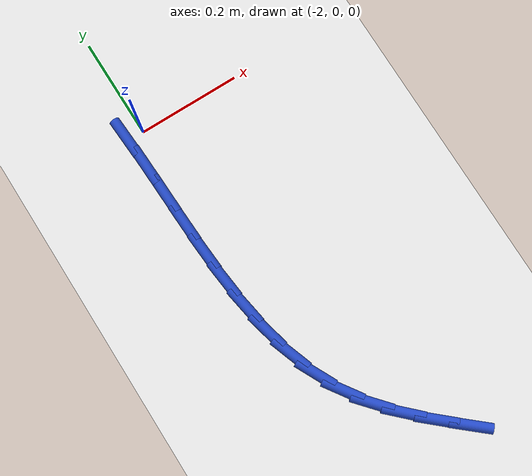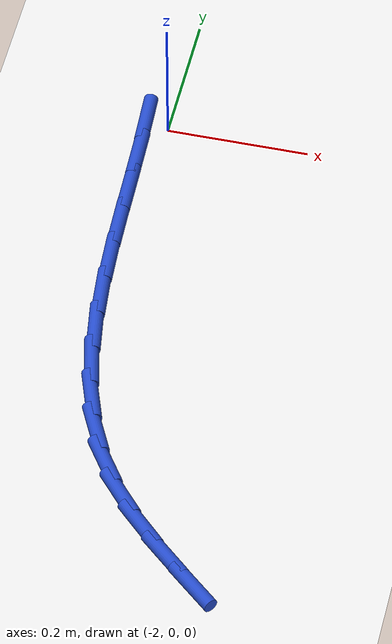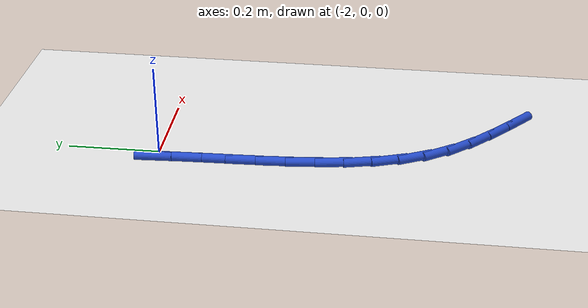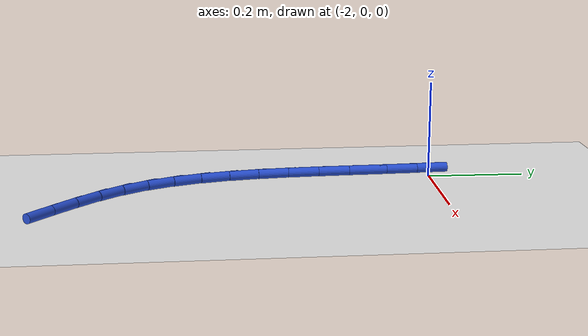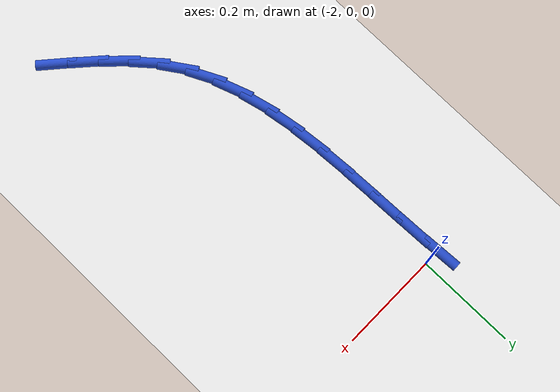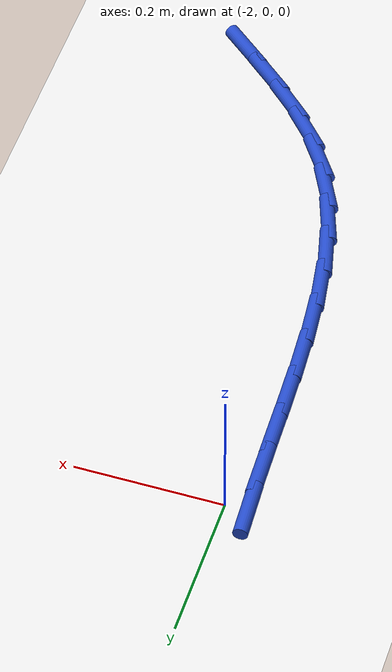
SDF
<sdf version="1.6">
 <world name="default">
  <model name="ground_plane">
   <static>1</static>
   <link name="link">
    <collision name="collision">
     <geometry><plane><normal>0 0 1</normal><size>100 100</size></plane></geometry>
     <surface><friction><ode><mu>100</mu><mu2>50</mu2></ode></friction></surface>
    </collision>
    <visual name="visual">
     <cast_shadows>0</cast_shadows>
     <geometry><plane><normal>0 0 1</normal><size>100 100</size></plane></geometry>
     <material>
      <script><uri>file://media/materials/scripts/gazebo.material</uri><name>Gazebo/WhiteGlow</name></script>
     </material>
    </visual>
   </link>
  </model>
  <model name="line">
   <link name="link_63">
    <pose>-2.032128498871237 0.00517659660904159 0.01 0 1.57 -1.5178224919789889</pose>
    <collision name="collision">
     <geometry><cylinder><radius>0.01</radius><length>0.08</length></cylinder></geometry>
    </collision>
    <visual name="visual">
     <material>
      <script><name>Gazebo/Blue</name><uri>file://media/materials/scripts/gazebo.material</uri></script>
     </material>
     <geometry><cylinder><radius>0.01</radius><length>0.08</length></cylinder></geometry>
    </visual>
   </link>
   <link name="link_64">
    <pose>-2.028670854054915 -0.06003314157211428 0.01 0 1.57 -1.5362401242822126</pose>
    <collision name="collision">
     <geometry><cylinder><radius>0.01</radius><length>0.08</length></cylinder></geometry>
    </collision>
    <visual name="visual">
     <material>
      <script><name>Gazebo/Blue</name><uri>file://media/materials/scripts/gazebo.material</uri></script>
     </material>
     <geometry><cylinder><radius>0.01</radius><length>0.08</length></cylinder></geometry>
    </visual>
   </link>
   <link name="link_65">
    <pose>-2.026414385600747 -0.12530565549355346 0.01 0 1.57 -1.5407680858189876</pose>
    <collision name="collision">
     <geometry><cylinder><radius>0.01</radius><length>0.08</length></cylinder></geometry>
    </collision>
    <visual name="visual">
     <material>
      <script><name>Gazebo/Blue</name><uri>file://media/materials/scripts/gazebo.material</uri></script>
     </material>
     <geometry><cylinder><radius>0.01</radius><length>0.08</length></cylinder></geometry>
    </visual>
   </link>
   <link name="link_66">
    <pose>-2.0244647357773484 -0.1902133466589276 0.01 0 1.57 -1.5312446601553587</pose>
    <collision name="collision">
     <geometry><cylinder><radius>0.01</radius><length>0.08</length></cylinder></geometry>
    </collision>
    <visual name="visual">
     <material>
      <script><name>Gazebo/Blue</name><uri>file://media/materials/scripts/gazebo.material</uri></script>
     </material>
     <geometry><cylinder><radius>0.01</radius><length>0.08</length></cylinder></geometry>
    </visual>
   </link>
   <link name="link_67">
    <pose>-2.0219275468533366 -0.25432861657188593 0.01 0 1.57 -1.5069818314792454</pose>
    <collision name="collision">
     <geometry><cylinder><radius>0.01</radius><length>0.08</length></cylinder></geometry>
    </collision>
    <visual name="visual">
     <material>
      <script><name>Gazebo/Blue</name><uri>file://media/materials/scripts/gazebo.material</uri></script>
     </material>
     <geometry><cylinder><radius>0.01</radius><length>0.08</length></cylinder></geometry>
    </visual>
   </link>
   <link name="link_68">
    <pose>-2.0179084610973295 -0.3172238667360803 0.01 0 1.57 -1.4667555981343792</pose>
    <collision name="collision">
     <geometry><cylinder><radius>0.01</radius><length>0.08</length></cylinder></geometry>
    </collision>
    <visual name="visual">
     <material>
      <script><name>Gazebo/Blue</name><uri>file://media/materials/scripts/gazebo.material</uri></script>
     </material>
     <geometry><cylinder><radius>0.01</radius><length>0.08</length></cylinder></geometry>
    </visual>
   </link>
   <link name="link_69">
    <pose>-2.011513120777944 -0.3784714986551615 0.01 0 1.57 -1.408874120392104</pose>
    <collision name="collision">
     <geometry><cylinder><radius>0.01</radius><length>0.08</length></cylinder></geometry>
    </collision>
    <visual name="visual">
     <material>
      <script><name>Gazebo/Blue</name><uri>file://media/materials/scripts/gazebo.material</uri></script>
     </material>
     <geometry><cylinder><radius>0.01</radius><length>0.08</length></cylinder></geometry>
    </visual>
   </link>
   <link name="link_70">
    <pose>-2.001847168163796 -0.43764391383278123 0.01 0 1.57 -1.3314136851275258</pose>
    <collision name="collision">
     <geometry><cylinder><radius>0.01</radius><length>0.08</length></cylinder></geometry>
    </collision>
    <visual name="visual">
     <material>
      <script><name>Gazebo/Blue</name><uri>file://media/materials/scripts/gazebo.material</uri></script>
     </material>
     <geometry><cylinder><radius>0.01</radius><length>0.08</length></cylinder></geometry>
    </visual>
   </link>
   <link name="link_71">
    <pose>-1.9880162455235042 -0.4943135137725888 0.01 0 1.57 -1.2327704861860616</pose>
    <collision name="collision">
     <geometry><cylinder><radius>0.01</radius><length>0.08</length></cylinder></geometry>
    </collision>
    <visual name="visual">
     <material>
      <script><name>Gazebo/Blue</name><uri>file://media/materials/scripts/gazebo.material</uri></script>
     </material>
     <geometry><cylinder><radius>0.01</radius><length>0.08</length></cylinder></geometry>
    </visual>
   </link>
   <link name="link_72">
    <pose>-1.969125995125685 -0.548052699978236 0.01 0 1.57 -1.112668307577346</pose>
    <collision name="collision">
     <geometry><cylinder><radius>0.01</radius><length>0.08</length></cylinder></geometry>
    </collision>
    <visual name="visual">
     <material>
      <script><name>Gazebo/Blue</name><uri>file://media/materials/scripts/gazebo.material</uri></script>
     </material>
     <geometry><cylinder><radius>0.01</radius><length>0.08</length></cylinder></geometry>
    </visual>
   </link>
   <link name="link_73">
    <pose>-1.9442820592389556 -0.5984338739533738 0.01 0 1.57 -0.9759397071011185</pose>
    <collision name="collision">
     <geometry><cylinder><radius>0.01</radius><length>0.08</length></cylinder></geometry>
    </collision>
    <visual name="visual">
     <material>
      <script><name>Gazebo/Blue</name><uri>file://media/materials/scripts/gazebo.material</uri></script>
     </material>
     <geometry><cylinder><radius>0.01</radius><length>0.08</length></cylinder></geometry>
    </visual>
   </link>
   <link name="link_74">
    <pose>-1.912703543781502 -0.6451053658430383 0.01 0 1.57 -0.8563835125163993</pose>
    <collision name="collision">
     <geometry><cylinder><radius>0.01</radius><length>0.08</length></cylinder></geometry>
    </collision>
    <visual name="visual">
     <material>
      <script><name>Gazebo/Blue</name><uri>file://media/materials/scripts/gazebo.material</uri></script>
     </material>
     <geometry><cylinder><radius>0.01</radius><length>0.08</length></cylinder></geometry>
    </visual>
   </link>
   <link name="link_75">
    <pose>-1.874964426244094 -0.6886221711264626 0.01 0 1.57 -0.7744318096290767</pose>
    <collision name="collision">
     <geometry><cylinder><radius>0.01</radius><length>0.08</length></cylinder></geometry>
    </collision>
    <visual name="visual">
     <material>
      <script><name>Gazebo/Blue</name><uri>file://media/materials/scripts/gazebo.material</uri></script>
     </material>
     <geometry><cylinder><radius>0.01</radius><length>0.08</length></cylinder></geometry>
    </visual>
   </link>
   <link name="link_76">
    <pose>-1.8325301277765953 -0.7301358296930323 0.01 0 1.57 -0.727817997594026</pose>
    <collision name="collision">
     <geometry><cylinder><radius>0.01</radius><length>0.08</length></cylinder></geometry>
    </collision>
    <visual name="visual">
     <material>
      <script><name>Gazebo/Blue</name><uri>file://media/materials/scripts/gazebo.material</uri></script>
     </material>
     <geometry><cylinder><radius>0.01</radius><length>0.08</length></cylinder></geometry>
    </visual>
   </link>
   <link name="link_77">
    <pose>-1.7868817254258178 -0.7708083581882494 0.01 0 1.57 -0.7132404873925652</pose>
    <collision name="collision">
     <geometry><cylinder><radius>0.01</radius><length>0.08</length></cylinder></geometry>
    </collision>
    <visual name="visual">
     <material>
      <script><name>Gazebo/Blue</name><uri>file://media/materials/scripts/gazebo.material</uri></script>
     </material>
     <geometry><cylinder><radius>0.01</radius><length>0.08</length></cylinder></geometry>
    </visual>
   </link>
  </model>
 </world>
</sdf>
